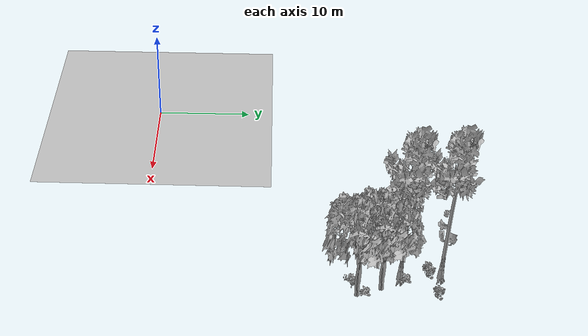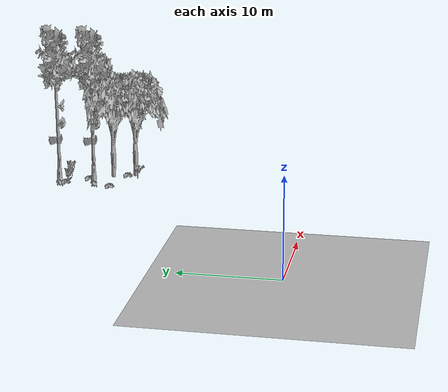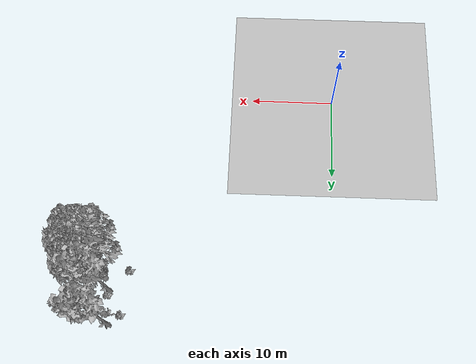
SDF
<sdf version="1.7">
 <world name="default">
  <model name="ground_plane">
   <static>1</static>
   <link name="link">
    <collision name="collision">
     <pose>-50 0 0 0 -0 0</pose>
     <geometry><plane><normal>0 0 1</normal><size>80 80</size></plane></geometry>
     <surface><contact><ode><min_depth>0.01</min_depth><max_vel>0</max_vel></ode></contact></surface>
    </collision>
    <visual name="grass">
     <cast_shadows>0</cast_shadows>
     <geometry>
      <mesh>
       <scale>0.46714285714285714 0.46714285714285714 0.1</scale>
       <uri>file://grass_plane/meshes/grass_plane.dae</uri>
      </mesh>
     </geometry>
    </visual>
   </link>
  </model>
  <model name="Tree 94">
   <static>1</static>
   <pose>26.878839813730877 22.905111436755483 0 1.57079 -0 0</pose>
   <link name="link">
    <collision name="collision">
     <geometry><mesh><scale>3.5 5 3.5</scale><uri>model://tree_2/meshes/tree_2.obj</uri></mesh></geometry>
    </collision>
    <visual name="visual">
     <geometry><mesh><scale>3.5 5 3.5</scale><uri>model://tree_2/meshes/tree_2.obj</uri></mesh></geometry>
    </visual>
   </link>
  </model>
  <model name="Tree 280">
   <static>1</static>
   <pose>25.482127242575984 24.799019771908775 0 1.57079 -0 0</pose>
   <link name="link">
    <collision name="collision">
     <geometry><mesh><scale>3.5 5 3.5</scale><uri>model://tree_9/meshes/tree_9.obj</uri></mesh></geometry>
    </collision>
    <visual name="visual">
     <geometry><mesh><scale>3.5 5 3.5</scale><uri>model://tree_9/meshes/tree_9.obj</uri></mesh></geometry>
    </visual>
   </link>
  </model>
  <model name="Tree 419">
   <static>1</static>
   <pose>25.176429054753797 28.641154063438307 0 1.57079 -0 0</pose>
   <link name="link">
    <collision name="collision">
     <geometry><mesh><scale>3.5 5 3.5</scale><uri>model://tree_9/meshes/tree_9.obj</uri></mesh></geometry>
    </collision>
    <visual name="visual">
     <geometry><mesh><scale>3.5 5 3.5</scale><uri>model://tree_9/meshes/tree_9.obj</uri></mesh></geometry>
    </visual>
   </link>
  </model>
  <model name="Tree 526">
   <static>1</static>
   <pose>27.745727482862563 20.608701988059877 0 1.57079 -0 0</pose>
   <link name="link">
    <collision name="collision">
     <geometry><mesh><scale>3.5 5 3.5</scale><uri>model://tree_2/meshes/tree_2.obj</uri></mesh></geometry>
    </collision>
    <visual name="visual">
     <geometry><mesh><scale>3.5 5 3.5</scale><uri>model://tree_2/meshes/tree_2.obj</uri></mesh></geometry>
    </visual>
   </link>
  </model>
  <model name="Bush 7">
   <static>1</static>
   <pose>25.543289985976912 25.34537856023678 0 1.57079 -0 0</pose>
   <link name="link">
    <collision name="collision">
     <geometry><mesh><scale>2 2 2</scale><uri>model://bush_2/meshes/bush_2.obj</uri></mesh></geometry>
     <surface><contact><collide_without_contact>false</collide_without_contact></contact></surface>
    </collision>
    <visual name="visual">
     <geometry><mesh><scale>2 2 2</scale><uri>model://bush_2/meshes/bush_2.obj</uri></mesh></geometry>
    </visual>
   </link>
  </model>
  <model name="Bush 88">
   <static>1</static>
   <pose>27.80571552797967 28.032004817102717 0 1.57079 -0 0</pose>
   <link name="link">
    <collision name="collision">
     <geometry><mesh><scale>2 2 2</scale><uri>model://bush_4/meshes/bush_4.obj</uri></mesh></geometry>
     <surface><contact><collide_without_contact>false</collide_without_contact></contact></surface>
    </collision>
    <visual name="visual">
     <geometry><mesh><scale>2 2 2</scale><uri>model://bush_4/meshes/bush_4.obj</uri></mesh></geometry>
    </visual>
   </link>
  </model>
  <model name="Bush 155">
   <static>1</static>
   <pose>26.853713543645796 20.164945527641834 0 1.57079 -0 0</pose>
   <link name="link">
    <collision name="collision">
     <geometry><mesh><scale>2 2 2</scale><uri>model://bush_5/meshes/bush_5.obj</uri></mesh></geometry>
     <surface><contact><collide_without_contact>false</collide_without_contact></contact></surface>
    </collision>
    <visual name="visual">
     <geometry><mesh><scale>2 2 2</scale><uri>model://bush_5/meshes/bush_5.obj</uri></mesh></geometry>
    </visual>
   </link>
  </model>
  <model name="Bush 307">
   <static>1</static>
   <pose>25.1256029453397 27.469155528688347 0 1.57079 -0 0</pose>
   <link name="link">
    <collision name="collision">
     <geometry><mesh><scale>2 2 2</scale><uri>model://bush_4/meshes/bush_4.obj</uri></mesh></geometry>
     <surface><contact><collide_without_contact>false</collide_without_contact></contact></surface>
    </collision>
    <visual name="visual">
     <geometry><mesh><scale>2 2 2</scale><uri>model://bush_4/meshes/bush_4.obj</uri></mesh></geometry>
    </visual>
   </link>
  </model>
  <model name="Bush 331">
   <static>1</static>
   <pose>23.286111628408342 22.476144441812302 0 1.57079 -0 0</pose>
   <link name="link">
    <collision name="collision">
     <geometry><mesh><scale>2 2 2</scale><uri>model://bush_2/meshes/bush_2.obj</uri></mesh></geometry>
     <surface><contact><collide_without_contact>false</collide_without_contact></contact></surface>
    </collision>
    <visual name="visual">
     <geometry><mesh><scale>2 2 2</scale><uri>model://bush_2/meshes/bush_2.obj</uri></mesh></geometry>
    </visual>
   </link>
  </model>
  <model name="Bush 478">
   <static>1</static>
   <pose>23.869610241886562 27.55969381283043 0 1.57079 -0 0</pose>
   <link name="link">
    <collision name="collision">
     <geometry><mesh><scale>2 2 2</scale><uri>model://bush_2/meshes/bush_2.obj</uri></mesh></geometry>
     <surface><contact><collide_without_contact>false</collide_without_contact></contact></surface>
    </collision>
    <visual name="visual">
     <geometry><mesh><scale>2 2 2</scale><uri>model://bush_2/meshes/bush_2.obj</uri></mesh></geometry>
    </visual>
   </link>
  </model>
  <model name="Bush 570">
   <static>1</static>
   <pose>27.35396046514937 21.422063755446494 0 1.57079 -0 0</pose>
   <link name="link">
    <collision name="collision">
     <geometry><mesh><scale>2 2 2</scale><uri>model://bush_2/meshes/bush_2.obj</uri></mesh></geometry>
     <surface><contact><collide_without_contact>false</collide_without_contact></contact></surface>
    </collision>
    <visual name="visual">
     <geometry><mesh><scale>2 2 2</scale><uri>model://bush_2/meshes/bush_2.obj</uri></mesh></geometry>
    </visual>
   </link>
  </model>
 </world>
</sdf>
